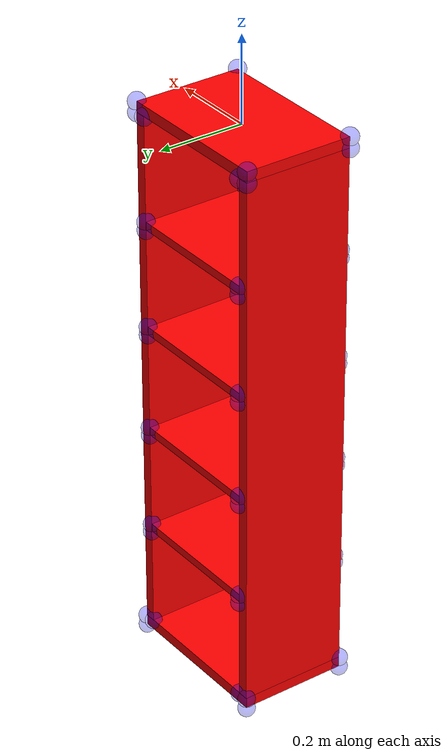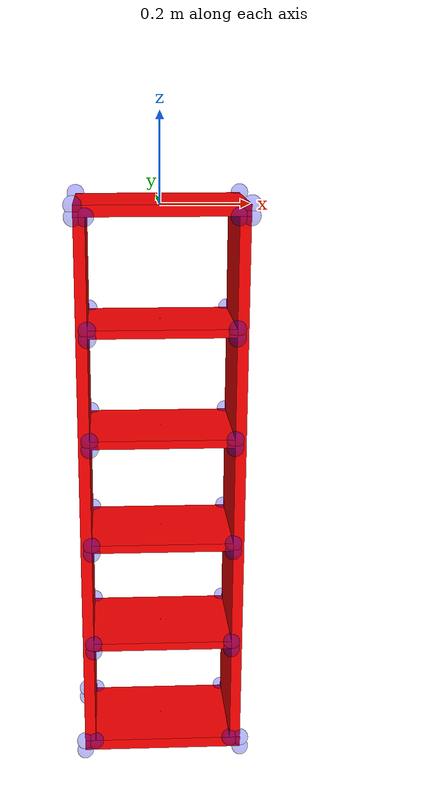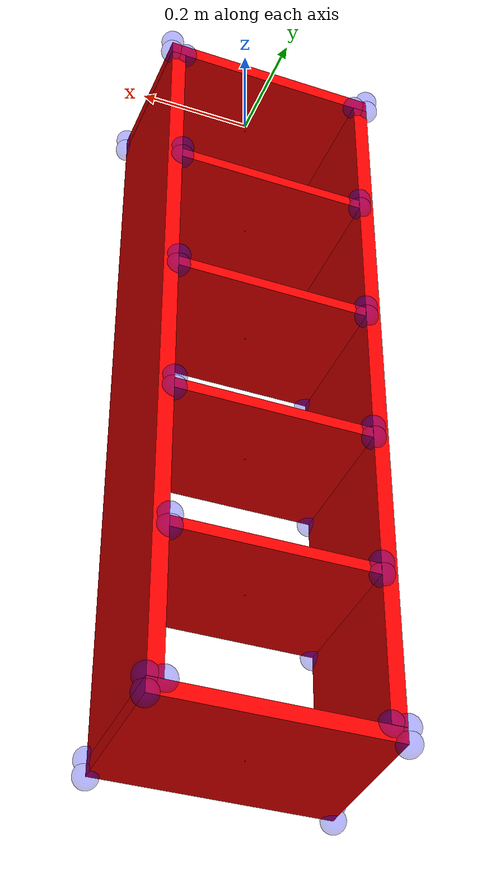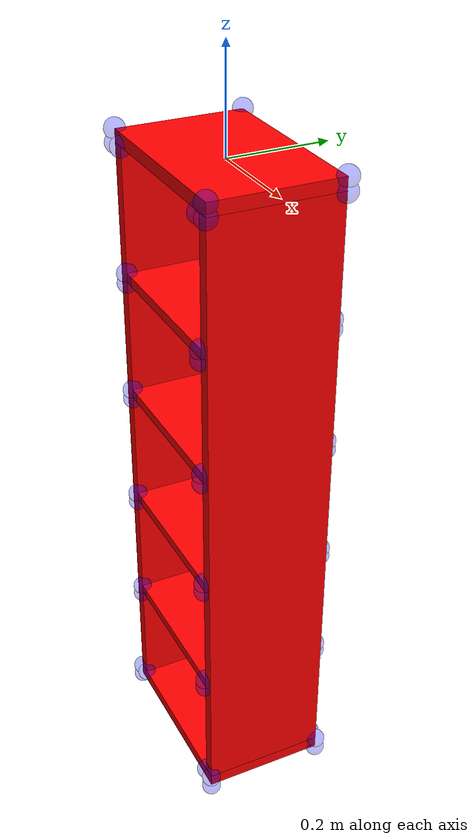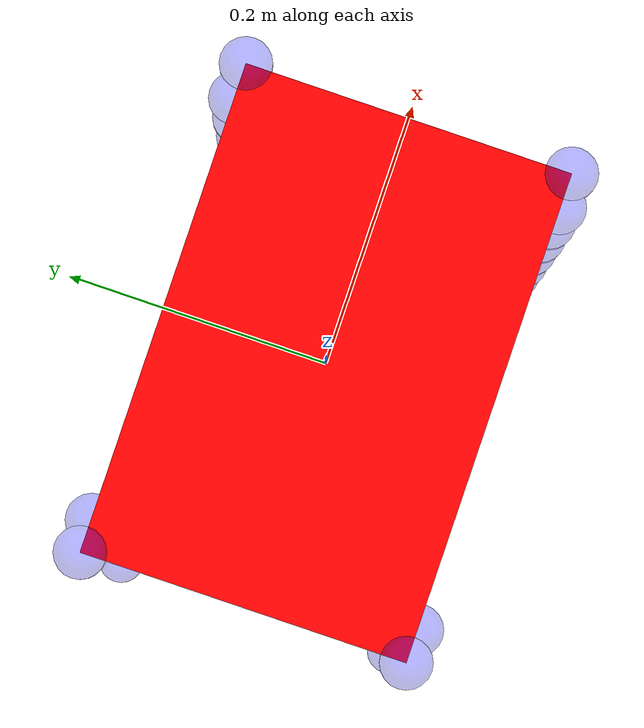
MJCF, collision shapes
<mujoco model="bookcase_expedit_0385">
    <asset>
        <mesh file="0.stl" name="part0" scale="0.001 0.001 0.001"/>
        <mesh file="7.stl" name="part7" scale="0.001 0.001 0.001"/>
        <mesh file="6.stl" name="part6" scale="0.001 0.001 0.001"/>
        <mesh file="5.stl" name="part5" scale="0.001 0.001 0.001"/>
        <mesh file="4.stl" name="part4" scale="0.001 0.001 0.001"/>
        <mesh file="3.stl" name="part3" scale="0.001 0.001 0.001"/>
        <mesh file="2.stl" name="part2" scale="0.001 0.001 0.001"/>
        <mesh file="1.stl" name="part1" scale="0.001 0.001 0.001"/>
    </asset>
    <equality>
        <weld active="false" body1="0_part0" body2="6_part6" solimp="1 1 0.5" solref="0.01 0.3"/>
        <weld active="false" body1="0_part0" body2="7_part7" solimp="1 1 0.5" solref="0.01 0.3"/>
        <weld active="false" body1="6_part6" body2="5_part5" solimp="1 1 0.5" solref="0.01 0.3"/>
        <weld active="false" body1="7_part7" body2="5_part5" solimp="1 1 0.5" solref="0.01 0.3"/>
        <weld active="false" body1="6_part6" body2="1_part1" solimp="1 1 0.5" solref="0.01 0.3"/>
        <weld active="false" body1="6_part6" body2="2_part2" solimp="1 1 0.5" solref="0.01 0.3"/>
        <weld active="false" body1="6_part6" body2="3_part3" solimp="1 1 0.5" solref="0.01 0.3"/>
        <weld active="false" body1="6_part6" body2="4_part4" solimp="1 1 0.5" solref="0.01 0.3"/>
        <weld active="false" body1="7_part7" body2="1_part1" solimp="1 1 0.5" solref="0.01 0.3"/>
        <weld active="false" body1="7_part7" body2="2_part2" solimp="1 1 0.5" solref="0.01 0.3"/>
        <weld active="false" body1="7_part7" body2="3_part3" solimp="1 1 0.5" solref="0.01 0.3"/>
        <weld active="false" body1="7_part7" body2="4_part4" solimp="1 1 0.5" solref="0.01 0.3"/>
    </equality>
    <worldbody>
        <body name="0_part0" pos="0.0 -1.8e-09 1e-10" quat="1 0 0 0">
            <geom conaffinity="0" contype="0" density="0" mesh="part0" name="0_part0_mesh" pos="0.0 0.0 0.0"
                  rgba="0.82 0.71 0.55 1" type="mesh"/>
            <site name="0_part0_horizontal_radius_site" pos="0.0 -1.8e-09 1e-10" quat="1 0 0 0" rgba="0 0 1 0.3"
                  size="0.001"/>
            <site name="0_part0_top_site" pos="0.0 -1.8e-09 0.012700024600000002" quat="1 0 0 0" rgba="0 0 1 0.3"
                  size="0.001"/>
            <site name="0_part0_bottom_site" pos="0.0 -1.8e-09 -0.0127000244" quat="1 0 0 0" rgba="0 0 1 0.3"
                  size="0.001"/>
            <site name="0_part0_corner_site8" pos="-0.1905 0.127000004 0.012700024600000002" quat="1 0 0 0"
                  rgba="0 0 1 0.3" size="0.02"/>
            <site name="0_part0_corner_site7" pos="0.1905 0.127000004 0.012700024600000002" quat="1 0 0 0"
                  rgba="0 0 1 0.3" size="0.02"/>
            <site name="0_part0_corner_site6" pos="0.1905 -0.12700000760000002 0.012700024600000002" quat="1 0 0 0"
                  rgba="0 0 1 0.3" size="0.02"/>
            <site name="0_part0_corner_site5" pos="-0.1905 -0.12700000760000002 0.012700024600000002" quat="1 0 0 0"
                  rgba="0 0 1 0.3" size="0.02"/>
            <site name="0_part0_corner_site4" pos="-0.1905 0.127000004 -0.0127000244" quat="1 0 0 0" rgba="0 0 1 0.3"
                  size="0.02"/>
            <site name="0_part0_corner_site3" pos="0.1905 0.127000004 -0.0127000244" quat="1 0 0 0" rgba="0 0 1 0.3"
                  size="0.02"/>
            <site name="0_part0_corner_site2" pos="0.1905 -0.12700000760000002 -0.0127000244" quat="1 0 0 0"
                  rgba="0 0 1 0.3" size="0.02"/>
            <site name="0_part0_corner_site1" pos="-0.1905 -0.12700000760000002 -0.0127000244" quat="1 0 0 0"
                  rgba="0 0 1 0.3" size="0.02"/>
            <site name="toppane-sidepane,0,180,conn_site2" pos="0.1805 0.0 -0.012700020000000001" quat="1 0 0 0"
                  rgba="0.9547, 0.1059, 0.1059, 0.3" size="0.001"/>
            <site name="toppane-sidepane,0,180,conn_site1" pos="-0.17880000000000001 0.0 -0.012700020000000001"
                  quat="1 0 0 0" rgba="0.9547, 0.1059, 0.1059, 0.3" size="0.001"/>
            <geom density="50" name="noviz_collision_0_part0_0" pos="0.0 1e-08 -7.925e-05" quat="1 0 0 0" rgba="1 0 0 1"
                  size="0.1905 0.127 0.01262077" solref="0.001 1" type="box"/>
        </body>
        <body name="7_part7" pos="0.1777999993 -1.8e-09 -0.6477000184" quat="1 0 0 0">
            <geom conaffinity="0" contype="0" density="0" mesh="part7" name="7_part7_mesh" pos="0.0 0.0 0.0"
                  rgba="0.82 0.71 0.55 1" type="mesh"/>
            <site name="7_part7_horizontal_radius_site" pos="-1e-10 -1.8e-09 -6e-09" quat="1 0 0 0" rgba="0 0 1 0.3"
                  size="0.001"/>
            <site name="7_part7_top_site" pos="-1e-10 -1.8e-09 0.635" quat="1 0 0 0" rgba="0 0 1 0.3" size="0.001"/>
            <site name="7_part7_bottom_site" pos="-1e-10 -1.8e-09 -0.635000012" quat="1 0 0 0" rgba="0 0 1 0.3"
                  size="0.001"/>
            <site name="7_part7_corner_site8" pos="-0.0127000008 0.127000004 0.635" quat="1 0 0 0" rgba="0 0 1 0.3"
                  size="0.02"/>
            <site name="7_part7_corner_site7" pos="0.0127000005 0.127000004 0.635" quat="1 0 0 0" rgba="0 0 1 0.3"
                  size="0.02"/>
            <site name="7_part7_corner_site6" pos="0.0127000005 -0.12700000760000002 0.635" quat="1 0 0 0"
                  rgba="0 0 1 0.3" size="0.02"/>
            <site name="7_part7_corner_site5" pos="-0.0127000008 -0.12700000760000002 0.635" quat="1 0 0 0"
                  rgba="0 0 1 0.3" size="0.02"/>
            <site name="7_part7_corner_site4" pos="-0.0127000008 0.127000004 -0.635000012" quat="1 0 0 0"
                  rgba="0 0 1 0.3" size="0.02"/>
            <site name="7_part7_corner_site3" pos="0.0127000005 0.127000004 -0.635000012" quat="1 0 0 0"
                  rgba="0 0 1 0.3" size="0.02"/>
            <site name="7_part7_corner_site2" pos="0.0127000005 -0.12700000760000002 -0.635000012" quat="1 0 0 0"
                  rgba="0 0 1 0.3" size="0.02"/>
            <site name="7_part7_corner_site1" pos="-0.0127000008 -0.12700000760000002 -0.635000012" quat="1 0 0 0"
                  rgba="0 0 1 0.3" size="0.02"/>
            <site name="sidepane-horpane,0,180,conn_site8" pos="-0.011800000000000001 0.0 0.3797"
                  quat="0.7071067 0 0.7071068 0" rgba="0.9908, 0.5949, 0.199, 0.3" size="0.001"/>
            <site name="sidepane-horpane,0,180,conn_site7" pos="-0.0128 0.0 0.1267" quat="0.7071067 0 0.7071068 0"
                  rgba="0.9908, 0.5949, 0.199, 0.3" size="0.001"/>
            <site name="sidepane-horpane,0,180,conn_site6" pos="-0.0128 0.0 -0.1263" quat="0.7071067 0 0.7071068 0"
                  rgba="0.9908, 0.5949, 0.199, 0.3" size="0.001"/>
            <site name="sidepane-horpane,0,180,conn_site5" pos="-0.011800000000000001 0.0 -0.3803"
                  quat="0.7071067 0 0.7071068 0" rgba="0.9908, 0.5949, 0.199, 0.3" size="0.001"/>
            <site name="sidepane-botpane,0,180,conn_site2" pos="0.00239999 0.0 -0.6350001" quat="0 1 0 0"
                  rgba="0.9672, 0.9672, 0.089, 0.3" size="0.001"/>
            <site name="sidepane-toppane,0,180,conn_site2" pos="0.0027 0.0 0.635" quat="1 0 0 0"
                  rgba="0.9547, 0.1059, 0.1059, 0.3" size="0.001"/>
            <geom density="50" name="noviz_collision_7_part7_0" pos="-0.00015747 0.00033535 0.0" quat="1 0 0 0"
                  rgba="1 0 0 1" size="0.01254253 0.12733540000000002 0.6350001" solref="0.001 1" type="box"/>
        </body>
        <body name="6_part6" pos="-0.17779999910000002 -1.8e-09 -0.6477000184" quat="1 0 0 0">
            <geom conaffinity="0" contype="0" density="0" mesh="part6" name="6_part6_mesh" pos="0.0 0.0 0.0"
                  rgba="0.82 0.71 0.55 1" type="mesh"/>
            <site name="6_part6_horizontal_radius_site" pos="-1e-10 -1.8e-09 -6e-09" quat="1 0 0 0" rgba="0 0 1 0.3"
                  size="0.001"/>
            <site name="6_part6_top_site" pos="-1e-10 -1.8e-09 0.635" quat="1 0 0 0" rgba="0 0 1 0.3" size="0.001"/>
            <site name="6_part6_bottom_site" pos="-1e-10 -1.8e-09 -0.635000012" quat="1 0 0 0" rgba="0 0 1 0.3"
                  size="0.001"/>
            <site name="6_part6_corner_site8" pos="-0.012700001 0.127000004 0.635" quat="1 0 0 0" rgba="0 0 1 0.3"
                  size="0.02"/>
            <site name="6_part6_corner_site7" pos="0.0127000008 0.127000004 0.635" quat="1 0 0 0" rgba="0 0 1 0.3"
                  size="0.02"/>
            <site name="6_part6_corner_site6" pos="0.0127000008 -0.12700000760000002 0.635" quat="1 0 0 0"
                  rgba="0 0 1 0.3" size="0.02"/>
            <site name="6_part6_corner_site5" pos="-0.012700001 -0.12700000760000002 0.635" quat="1 0 0 0"
                  rgba="0 0 1 0.3" size="0.02"/>
            <site name="6_part6_corner_site4" pos="-0.012700001 0.127000004 -0.635000012" quat="1 0 0 0"
                  rgba="0 0 1 0.3" size="0.02"/>
            <site name="6_part6_corner_site3" pos="0.0127000008 0.127000004 -0.635000012" quat="1 0 0 0"
                  rgba="0 0 1 0.3" size="0.02"/>
            <site name="6_part6_corner_site2" pos="0.0127000008 -0.12700000760000002 -0.635000012" quat="1 0 0 0"
                  rgba="0 0 1 0.3" size="0.02"/>
            <site name="6_part6_corner_site1" pos="-0.012700001 -0.12700000760000002 -0.635000012" quat="1 0 0 0"
                  rgba="0 0 1 0.3" size="0.02"/>
            <site name="sidepane-horpane,0,180,conn_site4" pos="0.013800000000000002 0.0 0.3807"
                  quat="0.7071067 0 -0.7071068 0" rgba="0.9908, 0.5949, 0.199, 0.3" size="0.001"/>
            <site name="sidepane-horpane,0,180,conn_site3" pos="0.0128 0.0 0.1227" quat="0.7071067 0 -0.7071068 0"
                  rgba="0.9908, 0.5949, 0.199, 0.3" size="0.001"/>
            <site name="sidepane-horpane,0,180,conn_site2" pos="0.0128 0.0 -0.12930000000000003"
                  quat="0.7071067 0 -0.7071068 0" rgba="0.9908, 0.5949, 0.199, 0.3" size="0.001"/>
            <site name="sidepane-horpane,0,180,conn_site1" pos="0.011800000000000001 0.0 -0.38230000000000003"
                  quat="0.7071067 0 -0.7071068 0" rgba="0.9908, 0.5949, 0.199, 0.3" size="0.001"/>
            <site name="sidepane-botpane,0,180,conn_site1" pos="-0.00439999 0.0 -0.6350001" quat="0 1 0 0"
                  rgba="0.9672, 0.9672, 0.089, 0.3" size="0.001"/>
            <site name="sidepane-toppane,0,180,conn_site1" pos="-0.001 0.0 0.635" quat="1 0 0 0"
                  rgba="0.9547, 0.1059, 0.1059, 0.3" size="0.001"/>
            <geom density="50" name="noviz_collision_6_part6_0" pos="0.00015747 0.00033535 0.0" quat="1 0 0 0"
                  rgba="1 0 0 1" size="0.01285747 0.12733540000000002 0.6350001" solref="0.001 1" type="box"/>
        </body>
        <body name="5_part5" pos="0.0 -1.8e-09 -1.2954000244" quat="1 0 0 0">
            <geom conaffinity="0" contype="0" density="0" mesh="part5" name="5_part5_mesh" pos="0.0 0.0 0.0"
                  rgba="0.82 0.71 0.55 1" type="mesh"/>
            <site name="5_part5_horizontal_radius_site" pos="0.0 -1.8e-09 0.0" quat="1 0 0 0" rgba="0 0 1 0.3"
                  size="0.001"/>
            <site name="5_part5_top_site" pos="0.0 -1.8e-09 0.0127" quat="1 0 0 0" rgba="0 0 1 0.3" size="0.001"/>
            <site name="5_part5_bottom_site" pos="0.0 -1.8e-09 -0.0127" quat="1 0 0 0" rgba="0 0 1 0.3" size="0.001"/>
            <site name="5_part5_corner_site8" pos="-0.1905 0.127000004 0.0127" quat="1 0 0 0" rgba="0 0 1 0.3"
                  size="0.02"/>
            <site name="5_part5_corner_site7" pos="0.1905 0.127000004 0.0127" quat="1 0 0 0" rgba="0 0 1 0.3"
                  size="0.02"/>
            <site name="5_part5_corner_site6" pos="0.1905 -0.12700000760000002 0.0127" quat="1 0 0 0" rgba="0 0 1 0.3"
                  size="0.02"/>
            <site name="5_part5_corner_site5" pos="-0.1905 -0.12700000760000002 0.0127" quat="1 0 0 0" rgba="0 0 1 0.3"
                  size="0.02"/>
            <site name="5_part5_corner_site4" pos="-0.1905 0.127000004 -0.0127" quat="1 0 0 0" rgba="0 0 1 0.3"
                  size="0.02"/>
            <site name="5_part5_corner_site3" pos="0.1905 0.127000004 -0.0127" quat="1 0 0 0" rgba="0 0 1 0.3"
                  size="0.02"/>
            <site name="5_part5_corner_site2" pos="0.1905 -0.12700000760000002 -0.0127" quat="1 0 0 0" rgba="0 0 1 0.3"
                  size="0.02"/>
            <site name="5_part5_corner_site1" pos="-0.1905 -0.12700000760000002 -0.0127" quat="1 0 0 0" rgba="0 0 1 0.3"
                  size="0.02"/>
            <site name="botpane-sidepane,0,180,conn_site2" pos="0.1802 0.0 0.01269995" quat="0 1 0 0"
                  rgba="0.9672, 0.9672, 0.089, 0.3" size="0.001"/>
            <site name="botpane-sidepane,0,180,conn_site1" pos="-0.1822 0.0 0.01269995" quat="0 1 0 0"
                  rgba="0.9672, 0.9672, 0.089, 0.3" size="0.001"/>
            <geom density="50" name="noviz_collision_5_part5_0" pos="0.0 1e-08 7.922e-05" quat="1 0 0 0" rgba="1 0 0 1"
                  size="0.1905 0.127 0.012779170000000001" solref="0.001 1" type="box"/>
        </body>
        <body name="4_part4" pos="3.1e-09 -1.8e-09 -1.0287000244000002" quat="1 0 0 0">
            <geom conaffinity="0" contype="0" density="0" mesh="part4" name="4_part4_mesh" pos="0.0 0.0 0.0"
                  rgba="0.82 0.71 0.55 1" type="mesh"/>
            <site name="4_part4_horizontal_radius_site" pos="3.1e-09 -1.8e-09 0.0" quat="1 0 0 0" rgba="0 0 1 0.3"
                  size="0.001"/>
            <site name="4_part4_top_site" pos="3.1e-09 -1.8e-09 0.009525" quat="1 0 0 0" rgba="0 0 1 0.3" size="0.001"/>
            <site name="4_part4_bottom_site" pos="3.1e-09 -1.8e-09 -0.009525" quat="1 0 0 0" rgba="0 0 1 0.3"
                  size="0.001"/>
            <site name="4_part4_corner_site8" pos="-0.1651 0.127000004 0.009525" quat="1 0 0 0" rgba="0 0 1 0.3"
                  size="0.02"/>
            <site name="4_part4_corner_site7" pos="0.1651000061 0.127000004 0.009525" quat="1 0 0 0" rgba="0 0 1 0.3"
                  size="0.02"/>
            <site name="4_part4_corner_site6" pos="0.1651000061 -0.12700000760000002 0.009525" quat="1 0 0 0"
                  rgba="0 0 1 0.3" size="0.02"/>
            <site name="4_part4_corner_site5" pos="-0.1651 -0.12700000760000002 0.009525" quat="1 0 0 0"
                  rgba="0 0 1 0.3" size="0.02"/>
            <site name="4_part4_corner_site4" pos="-0.1651 0.127000004 -0.009525" quat="1 0 0 0" rgba="0 0 1 0.3"
                  size="0.02"/>
            <site name="4_part4_corner_site3" pos="0.1651000061 0.127000004 -0.009525" quat="1 0 0 0" rgba="0 0 1 0.3"
                  size="0.02"/>
            <site name="4_part4_corner_site2" pos="0.1651000061 -0.12700000760000002 -0.009525" quat="1 0 0 0"
                  rgba="0 0 1 0.3" size="0.02"/>
            <site name="4_part4_corner_site1" pos="-0.1651 -0.12700000760000002 -0.009525" quat="1 0 0 0"
                  rgba="0 0 1 0.3" size="0.02"/>
            <site name="horpane-sidepane,0,180,conn_site5" pos="0.166 0.0 0.00070007" quat="0.7071067 0 0.7071068 0"
                  rgba="0.9908, 0.5949, 0.199, 0.3" size="0.001"/>
            <site name="horpane-sidepane,0,180,conn_site1" pos="-0.166 0.0 -0.0012999300000000001"
                  quat="0.7071067 0 -0.7071068 0" rgba="0.9908, 0.5949, 0.199, 0.3" size="0.001"/>
            <geom density="50" name="noviz_collision_4_part4_0" pos="0.0 1e-08 0.0" quat="1 0 0 0" rgba="1 0 0 1"
                  size="0.1651 0.127 0.009524900000000001" solref="0.001 1" type="box"/>
        </body>
        <body name="3_part3" pos="3.1e-09 -1.8e-09 -0.7747000244" quat="1 0 0 0">
            <geom conaffinity="0" contype="0" density="0" mesh="part3" name="3_part3_mesh" pos="0.0 0.0 0.0"
                  rgba="0.82 0.71 0.55 1" type="mesh"/>
            <site name="3_part3_horizontal_radius_site" pos="3.1e-09 -1.8e-09 0.0" quat="1 0 0 0" rgba="0 0 1 0.3"
                  size="0.001"/>
            <site name="3_part3_top_site" pos="3.1e-09 -1.8e-09 0.009525" quat="1 0 0 0" rgba="0 0 1 0.3" size="0.001"/>
            <site name="3_part3_bottom_site" pos="3.1e-09 -1.8e-09 -0.009525" quat="1 0 0 0" rgba="0 0 1 0.3"
                  size="0.001"/>
            <site name="3_part3_corner_site8" pos="-0.1651 0.127000004 0.009525" quat="1 0 0 0" rgba="0 0 1 0.3"
                  size="0.02"/>
            <site name="3_part3_corner_site7" pos="0.1651000061 0.127000004 0.009525" quat="1 0 0 0" rgba="0 0 1 0.3"
                  size="0.02"/>
            <site name="3_part3_corner_site6" pos="0.1651000061 -0.12700000760000002 0.009525" quat="1 0 0 0"
                  rgba="0 0 1 0.3" size="0.02"/>
            <site name="3_part3_corner_site5" pos="-0.1651 -0.12700000760000002 0.009525" quat="1 0 0 0"
                  rgba="0 0 1 0.3" size="0.02"/>
            <site name="3_part3_corner_site4" pos="-0.1651 0.127000004 -0.009525" quat="1 0 0 0" rgba="0 0 1 0.3"
                  size="0.02"/>
            <site name="3_part3_corner_site3" pos="0.1651000061 0.127000004 -0.009525" quat="1 0 0 0" rgba="0 0 1 0.3"
                  size="0.02"/>
            <site name="3_part3_corner_site2" pos="0.1651000061 -0.12700000760000002 -0.009525" quat="1 0 0 0"
                  rgba="0 0 1 0.3" size="0.02"/>
            <site name="3_part3_corner_site1" pos="-0.1651 -0.12700000760000002 -0.009525" quat="1 0 0 0"
                  rgba="0 0 1 0.3" size="0.02"/>
            <site name="horpane-sidepane,0,180,conn_site6" pos="0.165 0.0 0.00070001" quat="0.7071067 0 0.7071068 0"
                  rgba="0.9908, 0.5949, 0.199, 0.3" size="0.001"/>
            <site name="horpane-sidepane,0,180,conn_site2" pos="-0.165 0.0 -0.0022999900000000005"
                  quat="0.7071067 0 -0.7071068 0" rgba="0.9908, 0.5949, 0.199, 0.3" size="0.001"/>
            <geom density="50" name="noviz_collision_3_part3_0" pos="0.0 1e-08 0.0" quat="1 0 0 0" rgba="1 0 0 1"
                  size="0.1651 0.127 0.00952502" solref="0.001 1" type="box"/>
        </body>
        <body name="2_part2" pos="3.1e-09 -1.8e-09 -0.5207000244" quat="1 0 0 0">
            <geom conaffinity="0" contype="0" density="0" mesh="part2" name="2_part2_mesh" pos="0.0 0.0 0.0"
                  rgba="0.82 0.71 0.55 1" type="mesh"/>
            <site name="2_part2_horizontal_radius_site" pos="3.1e-09 -1.8e-09 0.0" quat="1 0 0 0" rgba="0 0 1 0.3"
                  size="0.001"/>
            <site name="2_part2_top_site" pos="3.1e-09 -1.8e-09 0.009525" quat="1 0 0 0" rgba="0 0 1 0.3" size="0.001"/>
            <site name="2_part2_bottom_site" pos="3.1e-09 -1.8e-09 -0.009525" quat="1 0 0 0" rgba="0 0 1 0.3"
                  size="0.001"/>
            <site name="2_part2_corner_site8" pos="-0.1651 0.127000004 0.009525" quat="1 0 0 0" rgba="0 0 1 0.3"
                  size="0.02"/>
            <site name="2_part2_corner_site7" pos="0.1651000061 0.127000004 0.009525" quat="1 0 0 0" rgba="0 0 1 0.3"
                  size="0.02"/>
            <site name="2_part2_corner_site6" pos="0.1651000061 -0.12700000760000002 0.009525" quat="1 0 0 0"
                  rgba="0 0 1 0.3" size="0.02"/>
            <site name="2_part2_corner_site5" pos="-0.1651 -0.12700000760000002 0.009525" quat="1 0 0 0"
                  rgba="0 0 1 0.3" size="0.02"/>
            <site name="2_part2_corner_site4" pos="-0.1651 0.127000004 -0.009525" quat="1 0 0 0" rgba="0 0 1 0.3"
                  size="0.02"/>
            <site name="2_part2_corner_site3" pos="0.1651000061 0.127000004 -0.009525" quat="1 0 0 0" rgba="0 0 1 0.3"
                  size="0.02"/>
            <site name="2_part2_corner_site2" pos="0.1651000061 -0.12700000760000002 -0.009525" quat="1 0 0 0"
                  rgba="0 0 1 0.3" size="0.02"/>
            <site name="2_part2_corner_site1" pos="-0.1651 -0.12700000760000002 -0.009525" quat="1 0 0 0"
                  rgba="0 0 1 0.3" size="0.02"/>
            <site name="horpane-sidepane,0,180,conn_site7" pos="0.165 0.0 -0.00029999" quat="0.7071067 0 0.7071068 0"
                  rgba="0.9908, 0.5949, 0.199, 0.3" size="0.001"/>
            <site name="horpane-sidepane,0,180,conn_site3" pos="-0.165 0.0 -0.00429999" quat="0.7071067 0 -0.7071068 0"
                  rgba="0.9908, 0.5949, 0.199, 0.3" size="0.001"/>
            <geom density="50" name="noviz_collision_2_part2_0" pos="0.0 1e-08 0.0" quat="1 0 0 0" rgba="1 0 0 1"
                  size="0.1651 0.127 0.00952502" solref="0.001 1" type="box"/>
        </body>
        <body name="1_part1" pos="3.1e-09 -1.8e-09 -0.2667" quat="1 0 0 0">
            <geom conaffinity="0" contype="0" density="0" mesh="part1" name="1_part1_mesh" pos="0.0 0.0 0.0"
                  rgba="0.82 0.71 0.55 1" type="mesh"/>
            <site name="1_part1_horizontal_radius_site" pos="3.1e-09 -1.8e-09 0.0" quat="1 0 0 0" rgba="0 0 1 0.3"
                  size="0.001"/>
            <site name="1_part1_top_site" pos="3.1e-09 -1.8e-09 0.0095250244" quat="1 0 0 0" rgba="0 0 1 0.3"
                  size="0.001"/>
            <site name="1_part1_bottom_site" pos="3.1e-09 -1.8e-09 -0.0095250244" quat="1 0 0 0" rgba="0 0 1 0.3"
                  size="0.001"/>
            <site name="1_part1_corner_site8" pos="-0.1651 0.127000004 0.0095250244" quat="1 0 0 0" rgba="0 0 1 0.3"
                  size="0.02"/>
            <site name="1_part1_corner_site7" pos="0.1651000061 0.127000004 0.0095250244" quat="1 0 0 0"
                  rgba="0 0 1 0.3" size="0.02"/>
            <site name="1_part1_corner_site6" pos="0.1651000061 -0.12700000760000002 0.0095250244" quat="1 0 0 0"
                  rgba="0 0 1 0.3" size="0.02"/>
            <site name="1_part1_corner_site5" pos="-0.1651 -0.12700000760000002 0.0095250244" quat="1 0 0 0"
                  rgba="0 0 1 0.3" size="0.02"/>
            <site name="1_part1_corner_site4" pos="-0.1651 0.127000004 -0.0095250244" quat="1 0 0 0" rgba="0 0 1 0.3"
                  size="0.02"/>
            <site name="1_part1_corner_site3" pos="0.1651000061 0.127000004 -0.0095250244" quat="1 0 0 0"
                  rgba="0 0 1 0.3" size="0.02"/>
            <site name="1_part1_corner_site2" pos="0.1651000061 -0.12700000760000002 -0.0095250244" quat="1 0 0 0"
                  rgba="0 0 1 0.3" size="0.02"/>
            <site name="1_part1_corner_site1" pos="-0.1651 -0.12700000760000002 -0.0095250244" quat="1 0 0 0"
                  rgba="0 0 1 0.3" size="0.02"/>
            <site name="horpane-sidepane,0,180,conn_site8" pos="0.166 0.0 -0.00129999" quat="0.7071067 0 0.7071068 0"
                  rgba="0.9908, 0.5949, 0.199, 0.3" size="0.001"/>
            <site name="horpane-sidepane,0,180,conn_site4" pos="-0.164 0.0 -0.00029999" quat="0.7071067 0 -0.7071068 0"
                  rgba="0.9908, 0.5949, 0.199, 0.3" size="0.001"/>
            <geom density="50" name="noviz_collision_1_part1_0" pos="0.0 1e-08 0.0" quat="1 0 0 0" rgba="1 0 0 1"
                  size="0.1651 0.127 0.00952502" solref="0.001 1" type="box"/>
        </body>
    </worldbody>
</mujoco>
